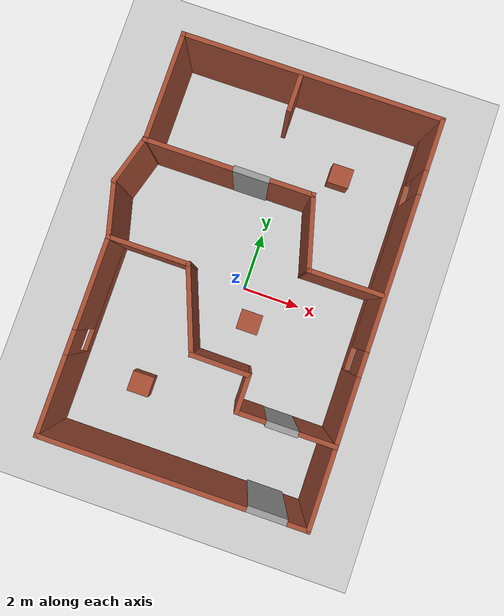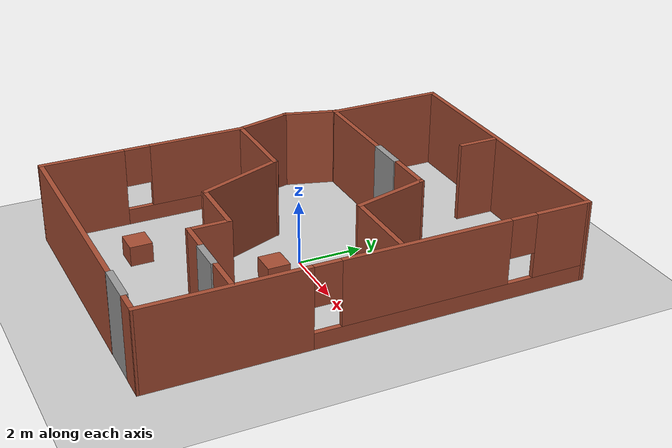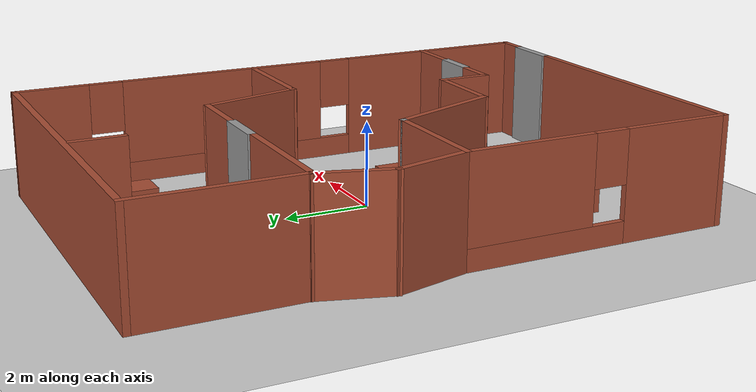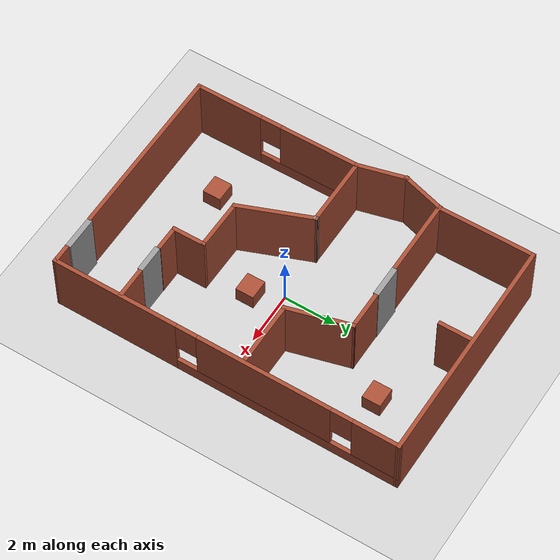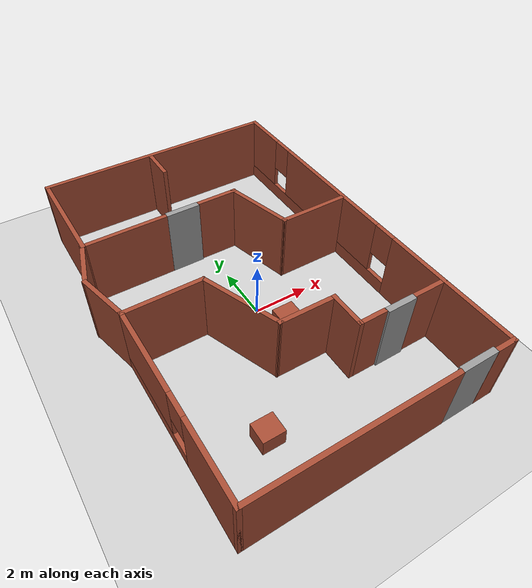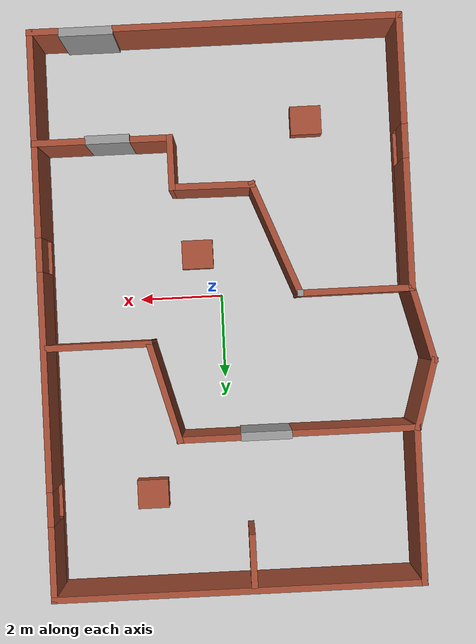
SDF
<sdf version="1.7">
 <world name="default">
  <light name="sun" type="directional">
   <pose>0 0 10 0 -0 0</pose>
   <diffuse>0.8 0.8 0.8 1</diffuse>
   <specular>0.2 0.2 0.2 1</specular>
   <attenuation>
    <range>1000</range>
    <constant>0.9</constant>
    <linear>0.01</linear>
    <quadratic>0.001</quadratic>
   </attenuation>
   <direction>-0.5 0.1 -0.9</direction>
   <spot><inner_angle>0</inner_angle><outer_angle>0</outer_angle><falloff>0</falloff></spot>
  </light>
  <model name="ground_plane">
   <static>1</static>
   <link name="link">
    <collision name="collision">
     <geometry><plane><normal>0 0 1</normal><size>100 100</size></plane></geometry>
     <surface>
      <contact><collide_bitmask>65535</collide_bitmask></contact>
      <friction><ode><mu>100</mu><mu2>50</mu2></ode></friction>
     </surface>
    </collision>
    <visual name="visual">
     <cast_shadows>0</cast_shadows>
     <geometry><plane><normal>0 0 1</normal><size>100 100</size></plane></geometry>
     <material>
      <script><uri>file://media/materials/scripts/gazebo.material</uri><name>Gazebo/Grey</name></script>
     </material>
    </visual>
   </link>
  </model>
  <gravity>0 0 -9.8</gravity>
  <magnetic_field>6e-06 2.3e-05 -4.2e-05</magnetic_field>
  <atmosphere type="adiabatic"/>
  <physics type="ode">
   <max_step_size>0.001</max_step_size>
   <real_time_factor>1</real_time_factor>
   <real_time_update_rate>1000</real_time_update_rate>
  </physics>
  <scene><ambient>0.4 0.4 0.4 1</ambient><background>0.7 0.7 0.7 1</background><shadows>1</shadows></scene>
  <spherical_coordinates>
   <surface_model>EARTH_WGS84</surface_model>
   <latitude_deg>0</latitude_deg>
   <longitude_deg>0</longitude_deg>
   <elevation>0</elevation>
   <heading_deg>0</heading_deg>
  </spherical_coordinates>
  <model name="building">
   <pose>-0.348021 0.30493 0 0 -0 0</pose>
   <link name="Door_1">
    <collision name="Door_1_Collision">
     <geometry><box><size>1.194 0.2 2.5</size></box></geometry>
     <pose>0 0 1.25 0 -0 0</pose>
    </collision>
    <visual name="Door_1_Visual">
     <pose>0 0 1.25 0 -0 0</pose>
     <geometry><box><size>1.194 0.2 2.5</size></box></geometry>
     <material>
      <script><uri>file://media/materials/scripts/gazebo.material</uri><name>Gazebo/Grey</name></script>
     </material>
    </visual>
    <pose>-0.554211 3.0204 0 0 -0 0</pose>
   </link>
   <link name="Door_2">
    <collision name="Door_2_Collision">
     <geometry><box><size>1.042 0.2 2.5</size></box></geometry>
     <pose>0 0 1.25 0 -0 0</pose>
    </collision>
    <visual name="Door_2_Visual">
     <pose>0 0 1.25 0 -0 0</pose>
     <geometry><box><size>1.042 0.2 2.5</size></box></geometry>
     <material>
      <script><uri>file://media/materials/scripts/gazebo.material</uri><name>Gazebo/Grey</name></script>
     </material>
    </visual>
    <pose>2.81507 -4.03291 0 0 -0 0</pose>
   </link>
   <link name="Door_3">
    <collision name="Door_3_Collision">
     <geometry><box><size>1.269 0.2 2.5</size></box></geometry>
     <pose>0 0 1.25 0 -0 0</pose>
    </collision>
    <visual name="Door_3_Visual">
     <pose>0 0 1.25 0 -0 0</pose>
     <geometry><box><size>1.269 0.2 2.5</size></box></geometry>
     <material>
      <script><uri>file://media/materials/scripts/gazebo.material</uri><name>Gazebo/Grey</name></script>
     </material>
    </visual>
    <pose>3.19563 -6.56686 0 0 -0 3.14027</pose>
   </link>
   <link name="Wall_17">
    <collision name="Wall_17_Collision">
     <geometry><box><size>1.25 0.15 2.5</size></box></geometry>
     <pose>0 0 1.25 0 -0 0</pose>
    </collision>
    <visual name="Wall_17_Visual">
     <pose>0 0 1.25 0 -0 0</pose>
     <geometry><box><size>1.25 0.15 2.5</size></box></geometry>
     <material>
      <script><uri>file://media/materials/scripts/gazebo.material</uri><name>Gazebo/Bricks</name></script>
      <ambient>1 1 1 1</ambient>
     </material>
     <meta><layer>0</layer></meta>
    </visual>
    <pose>3.94982 -4.00987 0 0 -0 3.14159</pose>
   </link>
   <link name="Wall_22">
    <collision name="Wall_22_Collision">
     <geometry><box><size>1.5 0.15 2.5</size></box></geometry>
     <pose>0 0 1.25 0 -0 0</pose>
    </collision>
    <visual name="Wall_22_Visual">
     <pose>0 0 1.25 0 -0 0</pose>
     <geometry><box><size>1.5 0.15 2.5</size></box></geometry>
     <material>
      <script><uri>file://media/materials/scripts/gazebo.material</uri><name>Gazebo/Bricks</name></script>
      <ambient>1 1 1 1</ambient>
     </material>
     <meta><layer>0</layer></meta>
    </visual>
    <pose>0.78799 3.03072 0 0 -0 0</pose>
   </link>
   <link name="Wall_27">
    <collision name="Wall_27_Collision">
     <geometry><box><size>1.25 0.15 2.5</size></box></geometry>
     <pose>0 0 1.25 0 -0 0</pose>
    </collision>
    <visual name="Wall_27_Visual">
     <pose>0 0 1.25 0 -0 0</pose>
     <geometry><box><size>1.25 0.15 2.5</size></box></geometry>
     <material>
      <script><uri>file://media/materials/scripts/gazebo.material</uri><name>Gazebo/Bricks</name></script>
      <ambient>1 1 1 1</ambient>
     </material>
     <meta><layer>0</layer></meta>
    </visual>
    <pose>-0.107545 5.9146 0 0 -0 -1.5708</pose>
   </link>
   <link name="Wall_3">
    <collision name="Wall_3_Collision">
     <geometry><box><size>0.75 0.15 2.5</size></box></geometry>
     <pose>0 0 1.25 0 -0 0</pose>
    </collision>
    <visual name="Wall_3_Visual">
     <pose>0 0 1.25 0 -0 0</pose>
     <geometry><box><size>0.75 0.15 2.5</size></box></geometry>
     <material>
      <script><uri>file://media/materials/scripts/gazebo.material</uri><name>Gazebo/Bricks</name></script>
      <ambient>1 1 1 1</ambient>
     </material>
     <meta><layer>0</layer></meta>
    </visual>
    <pose>4.2016 -6.59679 0 0 -0 0</pose>
   </link>
   <link name="Wall_4">
    <pose>4.525 0 0 0 -0 1.56725</pose>
    <visual name="Wall_4_Visual_0">
     <pose>-4.24673 0 1.25 0 -0 0</pose>
     <geometry><box><size>4.85021 0.15 2.5</size></box></geometry>
     <material>
      <script><uri>file://media/materials/scripts/gazebo.material</uri><name>Gazebo/Bricks</name></script>
      <ambient>1 1 1 1</ambient>
     </material>
     <meta><layer>0</layer></meta>
    </visual>
    <collision name="Wall_4_Collision_0">
     <geometry><box><size>4.85021 0.15 2.5</size></box></geometry>
     <pose>-4.24673 0 1.25 0 -0 0</pose>
    </collision>
    <visual name="Wall_4_Visual_1">
     <pose>2.4251 0 0.25 0 -0 0</pose>
     <geometry><box><size>8.49345 0.15 0.5</size></box></geometry>
     <material>
      <script><uri>file://media/materials/scripts/gazebo.material</uri><name>Gazebo/Bricks</name></script>
      <ambient>1 1 1 1</ambient>
     </material>
     <meta><layer>0</layer></meta>
    </visual>
    <collision name="Wall_4_Collision_1">
     <geometry><box><size>8.49345 0.15 0.5</size></box></geometry>
     <pose>2.4251 0 0.25 0 -0 0</pose>
    </collision>
    <visual name="Wall_4_Visual_2">
     <pose>1.53455 0 1.5 0 -0 0</pose>
     <geometry><box><size>5.11234 0.15 2</size></box></geometry>
     <material>
      <script><uri>file://media/materials/scripts/gazebo.material</uri><name>Gazebo/Bricks</name></script>
      <ambient>1 1 1 1</ambient>
     </material>
     <meta><layer>0</layer></meta>
    </visual>
    <collision name="Wall_4_Collision_2">
     <geometry><box><size>5.11234 0.15 2</size></box></geometry>
     <pose>1.53455 0 1.5 0 -0 0</pose>
    </collision>
    <visual name="Wall_4_Visual_3">
     <pose>5.78127 0 1.5 0 -0 0</pose>
     <geometry><box><size>1.78112 0.15 2</size></box></geometry>
     <material>
      <script><uri>file://media/materials/scripts/gazebo.material</uri><name>Gazebo/Bricks</name></script>
      <ambient>1 1 1 1</ambient>
     </material>
     <meta><layer>0</layer></meta>
    </visual>
    <collision name="Wall_4_Collision_3">
     <geometry><box><size>1.78112 0.15 2</size></box></geometry>
     <pose>5.78127 0 1.5 0 -0 0</pose>
    </collision>
    <visual name="Wall_4_Visual_4">
     <pose>-1.42162 0 1.9 0 -0 0</pose>
     <geometry><box><size>0.8 0.15 1.2</size></box></geometry>
     <material>
      <script><uri>file://media/materials/scripts/gazebo.material</uri><name>Gazebo/Bricks</name></script>
      <ambient>1 1 1 1</ambient>
     </material>
     <meta><layer>0</layer></meta>
    </visual>
    <collision name="Wall_4_Collision_4">
     <geometry><box><size>0.8 0.15 1.2</size></box></geometry>
     <pose>-1.42162 0 1.9 0 -0 0</pose>
    </collision>
    <visual name="Wall_4_Visual_5">
     <pose>4.49071 0 1.9 0 -0 0</pose>
     <geometry><box><size>0.8 0.15 1.2</size></box></geometry>
     <material>
      <script><uri>file://media/materials/scripts/gazebo.material</uri><name>Gazebo/Bricks</name></script>
      <ambient>1 1 1 1</ambient>
     </material>
     <meta><layer>0</layer></meta>
    </visual>
    <collision name="Wall_4_Collision_5">
     <geometry><box><size>0.8 0.15 1.2</size></box></geometry>
     <pose>4.49071 0 1.9 0 -0 0</pose>
    </collision>
   </link>
   <link name="Wall_48">
    <collision name="Wall_48_Collision">
     <geometry><box><size>2.5 0.15 2.5</size></box></geometry>
     <pose>0 0 1.25 0 -0 0</pose>
    </collision>
    <visual name="Wall_48_Visual">
     <pose>0 0 1.25 0 -0 0</pose>
     <geometry><box><size>2.5 0.15 2.5</size></box></geometry>
     <material>
      <script><uri>file://media/materials/scripts/gazebo.material</uri><name>Gazebo/Bricks</name></script>
      <ambient>1 1 1 1</ambient>
     </material>
     <meta><layer>0</layer></meta>
    </visual>
    <pose>1.7671 1.89576 0 0 -0 -1.309</pose>
   </link>
   <link name="Wall_49">
    <collision name="Wall_49_Collision">
     <geometry><box><size>2.5 0.15 2.5</size></box></geometry>
     <pose>0 0 1.25 0 -0 0</pose>
    </collision>
    <visual name="Wall_49_Visual">
     <pose>0 0 1.25 0 -0 0</pose>
     <geometry><box><size>2.5 0.15 2.5</size></box></geometry>
     <material>
      <script><uri>file://media/materials/scripts/gazebo.material</uri><name>Gazebo/Bricks</name></script>
      <ambient>1 1 1 1</ambient>
     </material>
     <meta><layer>0</layer></meta>
    </visual>
    <pose>3.24621 0.760796 0 0 -0 0</pose>
   </link>
   <link name="Wall_51">
    <pose>-4.0984 -3.42179 0 0 -0 1.5708</pose>
    <visual name="Wall_51_Visual_0">
     <pose>-1.94403 0 1.25 0 -0 0</pose>
     <geometry><box><size>2.61194 0.15 2.5</size></box></geometry>
     <material>
      <script><uri>file://media/materials/scripts/gazebo.material</uri><name>Gazebo/Bricks</name></script>
      <ambient>1 1 1 1</ambient>
     </material>
     <meta><layer>0</layer></meta>
    </visual>
    <collision name="Wall_51_Collision_0">
     <geometry><box><size>2.61194 0.15 2.5</size></box></geometry>
     <pose>-1.94403 0 1.25 0 -0 0</pose>
    </collision>
    <visual name="Wall_51_Visual_1">
     <pose>1.30597 0 0.25 0 -0 0</pose>
     <geometry><box><size>3.88806 0.15 0.5</size></box></geometry>
     <material>
      <script><uri>file://media/materials/scripts/gazebo.material</uri><name>Gazebo/Bricks</name></script>
      <ambient>1 1 1 1</ambient>
     </material>
     <meta><layer>0</layer></meta>
    </visual>
    <collision name="Wall_51_Collision_1">
     <geometry><box><size>3.88806 0.15 0.5</size></box></geometry>
     <pose>1.30597 0 0.25 0 -0 0</pose>
    </collision>
    <visual name="Wall_51_Visual_2">
     <pose>1.70597 0 1.5 0 -0 0</pose>
     <geometry><box><size>3.08806 0.15 2</size></box></geometry>
     <material>
      <script><uri>file://media/materials/scripts/gazebo.material</uri><name>Gazebo/Bricks</name></script>
      <ambient>1 1 1 1</ambient>
     </material>
     <meta><layer>0</layer></meta>
    </visual>
    <collision name="Wall_51_Collision_2">
     <geometry><box><size>3.08806 0.15 2</size></box></geometry>
     <pose>1.70597 0 1.5 0 -0 0</pose>
    </collision>
    <visual name="Wall_51_Visual_3">
     <pose>-0.238064 0 1.9 0 -0 0</pose>
     <geometry><box><size>0.8 0.15 1.2</size></box></geometry>
     <material>
      <script><uri>file://media/materials/scripts/gazebo.material</uri><name>Gazebo/Bricks</name></script>
      <ambient>1 1 1 1</ambient>
     </material>
     <meta><layer>0</layer></meta>
    </visual>
    <collision name="Wall_51_Collision_3">
     <geometry><box><size>0.8 0.15 1.2</size></box></geometry>
     <pose>-0.238064 0 1.9 0 -0 0</pose>
    </collision>
   </link>
   <link name="Wall_62">
    <collision name="Wall_62_Collision">
     <geometry><box><size>8.75 0.15 2.5</size></box></geometry>
     <pose>0 0 1.25 0 -0 0</pose>
    </collision>
    <visual name="Wall_62_Visual">
     <pose>0 0 1.25 0 -0 0</pose>
     <geometry><box><size>8.75 0.15 2.5</size></box></geometry>
     <material>
      <script><uri>file://media/materials/scripts/gazebo.material</uri><name>Gazebo/Bricks</name></script>
      <ambient>1 1 1 1</ambient>
     </material>
     <meta><layer>0</layer></meta>
    </visual>
    <pose>0.248391 6.59679 0 0 -0 3.14159</pose>
   </link>
   <link name="Wall_63">
    <collision name="Wall_63_Collision">
     <geometry><box><size>3.75 0.15 2.5</size></box></geometry>
     <pose>0 0 1.25 0 -0 0</pose>
    </collision>
    <visual name="Wall_63_Visual">
     <pose>0 0 1.25 0 -0 0</pose>
     <geometry><box><size>3.75 0.15 2.5</size></box></geometry>
     <material>
      <script><uri>file://media/materials/scripts/gazebo.material</uri><name>Gazebo/Bricks</name></script>
      <ambient>1 1 1 1</ambient>
     </material>
     <meta><layer>0</layer></meta>
    </visual>
    <pose>-4.05161 4.79679 0 0 -0 -1.5708</pose>
   </link>
   <link name="Wall_67">
    <collision name="Wall_67_Collision">
     <geometry><box><size>1.91045 0.15 2.5</size></box></geometry>
     <pose>0 0 1.25 0 -0 0</pose>
    </collision>
    <visual name="Wall_67_Visual">
     <pose>0 0 1.25 0 -0 0</pose>
     <geometry><box><size>1.91045 0.15 2.5</size></box></geometry>
     <material>
      <script><uri>file://media/materials/scripts/gazebo.material</uri><name>Gazebo/Bricks</name></script>
      <ambient>1 1 1 1</ambient>
     </material>
     <meta><layer>0</layer></meta>
    </visual>
    <pose>-4.31441 0.606519 0 0 -0 -1.32286</pose>
   </link>
   <link name="Wall_69">
    <collision name="Wall_69_Collision">
     <geometry><box><size>3 0.15 2.5</size></box></geometry>
     <pose>0 0 1.25 0 -0 0</pose>
    </collision>
    <visual name="Wall_69_Visual">
     <pose>0 0 1.25 0 -0 0</pose>
     <geometry><box><size>3 0.15 2.5</size></box></geometry>
     <material>
      <script><uri>file://media/materials/scripts/gazebo.material</uri><name>Gazebo/Bricks</name></script>
      <ambient>1 1 1 1</ambient>
     </material>
     <meta><layer>0</layer></meta>
    </visual>
    <pose>-2.64928 2.99737 0 0 -0 3.14159</pose>
   </link>
   <link name="Wall_7">
    <collision name="Wall_7_Collision">
     <geometry><box><size>6.75 0.15 2.5</size></box></geometry>
     <pose>0 0 1.25 0 -0 0</pose>
    </collision>
    <visual name="Wall_7_Visual">
     <pose>0 0 1.25 0 -0 0</pose>
     <geometry><box><size>6.75 0.15 2.5</size></box></geometry>
     <material>
      <script><uri>file://media/materials/scripts/gazebo.material</uri><name>Gazebo/Bricks</name></script>
      <ambient>1 1 1 1</ambient>
     </material>
     <meta><layer>0</layer></meta>
    </visual>
    <pose>-0.798397 -6.59679 0 0 -0 0</pose>
   </link>
   <link name="Wall_71">
    <collision name="Wall_71_Collision">
     <geometry><box><size>1.75378 0.15 2.5</size></box></geometry>
     <pose>0 0 1.25 0 -0 0</pose>
    </collision>
    <visual name="Wall_71_Visual">
     <pose>0 0 1.25 0 -0 0</pose>
     <geometry><box><size>1.75378 0.15 2.5</size></box></geometry>
     <material>
      <script><uri>file://media/materials/scripts/gazebo.material</uri><name>Gazebo/Bricks</name></script>
      <ambient>1 1 1 1</ambient>
     </material>
     <meta><layer>0</layer></meta>
    </visual>
    <pose>-4.30235 2.2286 0 0 -0 -1.85919</pose>
   </link>
   <link name="Wall_73">
    <collision name="Wall_73_Collision">
     <geometry><box><size>2.00009 0.15 2.5</size></box></geometry>
     <pose>0 0 1.25 0 -0 0</pose>
    </collision>
    <visual name="Wall_73_Visual">
     <pose>0 0 1.25 0 -0 0</pose>
     <geometry><box><size>2.00009 0.15 2.5</size></box></geometry>
     <material>
      <script><uri>file://media/materials/scripts/gazebo.material</uri><name>Gazebo/Bricks</name></script>
      <ambient>1 1 1 1</ambient>
     </material>
     <meta><layer>0</layer></meta>
    </visual>
    <pose>0.428488 -2.83622 0 0 -0 -0.010147</pose>
   </link>
   <link name="Wall_76">
    <collision name="Wall_76_Collision">
     <geometry><box><size>1.30382 0.15 2.5</size></box></geometry>
     <pose>0 0 1.25 0 -0 0</pose>
    </collision>
    <visual name="Wall_76_Visual">
     <pose>0 0 1.25 0 -0 0</pose>
     <geometry><box><size>1.30382 0.15 2.5</size></box></geometry>
     <material>
      <script><uri>file://media/materials/scripts/gazebo.material</uri><name>Gazebo/Bricks</name></script>
      <ambient>1 1 1 1</ambient>
     </material>
     <meta><layer>0</layer></meta>
    </visual>
    <pose>1.3636 -3.42232 0 0 -0 -1.5708</pose>
   </link>
   <link name="Wall_79">
    <collision name="Wall_79_Collision">
     <geometry><box><size>1 0.15 2.5</size></box></geometry>
     <pose>0 0 1.25 0 -0 0</pose>
    </collision>
    <visual name="Wall_79_Visual">
     <pose>0 0 1.25 0 -0 0</pose>
     <geometry><box><size>1 0.15 2.5</size></box></geometry>
     <material>
      <script><uri>file://media/materials/scripts/gazebo.material</uri><name>Gazebo/Bricks</name></script>
      <ambient>1 1 1 1</ambient>
     </material>
     <meta><layer>0</layer></meta>
    </visual>
    <pose>1.7886 -3.99903 0 0 -0 0</pose>
   </link>
   <link name="Wall_83">
    <collision name="Wall_83_Collision">
     <geometry><box><size>2.75 0.15 2.5</size></box></geometry>
     <pose>0 0 1.25 0 -0 0</pose>
    </collision>
    <visual name="Wall_83_Visual">
     <pose>0 0 1.25 0 -0 0</pose>
     <geometry><box><size>2.75 0.15 2.5</size></box></geometry>
     <material>
      <script><uri>file://media/materials/scripts/gazebo.material</uri><name>Gazebo/Bricks</name></script>
      <ambient>1 1 1 1</ambient>
     </material>
     <meta><layer>0</layer></meta>
    </visual>
    <pose>-2.7984 -0.246788 0 0 -0 0</pose>
   </link>
   <link name="Wall_84">
    <collision name="Wall_84_Collision">
     <geometry><box><size>0.15 0.15 2.5</size></box></geometry>
     <pose>0 0 1.25 0 -0 0</pose>
    </collision>
    <visual name="Wall_84_Visual">
     <pose>0 0 1.25 0 -0 0</pose>
     <geometry><box><size>0.15 0.15 2.5</size></box></geometry>
     <material>
      <script><uri>file://media/materials/scripts/gazebo.material</uri><name>Gazebo/Grey</name></script>
      <ambient>1 1 1 1</ambient>
     </material>
     <meta><layer>0</layer></meta>
    </visual>
    <pose>-1.4984 -0.246788 0 0 -0 0</pose>
   </link>
   <link name="Wall_85">
    <collision name="Wall_85_Collision">
     <geometry><box><size>2.91775 0.15 2.5</size></box></geometry>
     <pose>0 0 1.25 0 -0 0</pose>
    </collision>
    <visual name="Wall_85_Visual">
     <pose>0 0 1.25 0 -0 0</pose>
     <geometry><box><size>2.91775 0.15 2.5</size></box></geometry>
     <material>
      <script><uri>file://media/materials/scripts/gazebo.material</uri><name>Gazebo/Bricks</name></script>
      <ambient>1 1 1 1</ambient>
     </material>
     <meta><layer>0</layer></meta>
    </visual>
    <pose>-0.997455 -1.53681 0 0 -0 -1.2004</pose>
   </link>
   <static>1</static>
  </model>
  <model name="unit_box_3">
   <link name="link">
    <inertial>
     <mass>1</mass>
     <inertia>
      <ixx>0.166667</ixx>
      <ixy>0</ixy>
      <ixz>0</ixz>
      <iyy>0.166667</iyy>
      <iyz>0</iyz>
      <izz>0.166667</izz>
     </inertia>
    </inertial>
    <visual name="visual">
     <geometry><box><size>0.754763 0.696011 0.624424</size></box></geometry>
     <material>
      <script><name>Gazebo/Bricks</name><uri>file://media/materials/scripts/gazebo.material</uri></script>
      <shader type="pixel"><normal_map>__default__</normal_map></shader>
      <ambient>1 1 1 1</ambient>
      <diffuse>1 1 1 1</diffuse>
      <specular>0.2 0.2 0.2 1</specular>
      <emissive>0 0 0 1</emissive>
     </material>
    </visual>
    <collision name="collision">
     <geometry><box><size>0.754763 0.696011 0.624424</size></box></geometry>
     <surface>
      <friction>
       <ode><mu>1</mu><mu2>1</mu2><fdir1>0 0 0</fdir1><slip1>0</slip1><slip2>0</slip2></ode>
       <torsional>
        <coefficient>1</coefficient>
        <patch_radius>0</patch_radius>
        <surface_radius>0</surface_radius>
        <use_patch_radius>1</use_patch_radius>
        <ode><slip>0</slip></ode>
       </torsional>
      </friction>
      <bounce><restitution_coefficient>0</restitution_coefficient><threshold>1e+06</threshold></bounce>
      <contact>
       <collide_without_contact>0</collide_without_contact>
       <collide_without_contact_bitmask>1</collide_without_contact_bitmask>
       <collide_bitmask>1</collide_bitmask>
       <ode>
        <soft_cfm>0</soft_cfm>
        <soft_erp>0.2</soft_erp>
        <kp>1e+13</kp>
        <kd>1</kd>
        <max_vel>0.01</max_vel>
        <min_depth>0</min_depth>
       </ode>
       <bullet>
        <split_impulse>1</split_impulse>
        <split_impulse_penetration_threshold>-0.01</split_impulse_penetration_threshold>
        <soft_cfm>0</soft_cfm>
        <soft_erp>0.2</soft_erp>
        <kp>1e+13</kp>
        <kd>1</kd>
       </bullet>
      </contact>
     </surface>
    </collision>
   </link>
   <static>0</static>
   <pose>1.89691 4.75214 0.312212 0 -0 0</pose>
  </model>
  <model name="unit_box_2">
   <link name="link">
    <inertial>
     <mass>1</mass>
     <inertia>
      <ixx>0.166667</ixx>
      <ixy>0</ixy>
      <ixz>0</ixz>
      <iyy>0.166667</iyy>
      <iyz>0</iyz>
      <izz>0.166667</izz>
     </inertia>
    </inertial>
    <visual name="visual">
     <geometry><box><size>0.754769 0.696011 0.624422</size></box></geometry>
     <material>
      <script><name>Gazebo/Bricks</name><uri>file://media/materials/scripts/gazebo.material</uri></script>
      <shader type="pixel"><normal_map>__default__</normal_map></shader>
      <ambient>1 1 1 1</ambient>
      <diffuse>1 1 1 1</diffuse>
      <specular>0.2 0.2 0.2 1</specular>
      <emissive>0 0 0 1</emissive>
     </material>
    </visual>
    <collision name="collision">
     <geometry><box><size>0.754769 0.696011 0.624422</size></box></geometry>
     <surface>
      <friction>
       <ode><mu>1</mu><mu2>1</mu2><fdir1>0 0 0</fdir1><slip1>0</slip1><slip2>0</slip2></ode>
       <torsional>
        <coefficient>1</coefficient>
        <patch_radius>0</patch_radius>
        <surface_radius>0</surface_radius>
        <use_patch_radius>1</use_patch_radius>
        <ode><slip>0</slip></ode>
       </torsional>
      </friction>
      <bounce><restitution_coefficient>0</restitution_coefficient><threshold>1e+06</threshold></bounce>
      <contact>
       <collide_without_contact>0</collide_without_contact>
       <collide_without_contact_bitmask>1</collide_without_contact_bitmask>
       <collide_bitmask>1</collide_bitmask>
       <ode>
        <soft_cfm>0</soft_cfm>
        <soft_erp>0.2</soft_erp>
        <kp>1e+13</kp>
        <kd>1</kd>
        <max_vel>0.01</max_vel>
        <min_depth>0</min_depth>
       </ode>
       <bullet>
        <split_impulse>1</split_impulse>
        <split_impulse_penetration_threshold>-0.01</split_impulse_penetration_threshold>
        <soft_cfm>0</soft_cfm>
        <soft_erp>0.2</soft_erp>
        <kp>1e+13</kp>
        <kd>1</kd>
       </bullet>
      </contact>
     </surface>
    </collision>
   </link>
   <static>0</static>
   <pose>0.537603 -1.0323 0.312212 0 -0 0</pose>
  </model>
  <model name="unit_box_1">
   <link name="link">
    <inertial>
     <mass>1</mass>
     <inertia>
      <ixx>0.166667</ixx>
      <ixy>0</ixy>
      <ixz>0</ixz>
      <iyy>0.166667</iyy>
      <iyz>0</iyz>
      <izz>0.166667</izz>
     </inertia>
    </inertial>
    <visual name="visual">
     <geometry><box><size>0.754766 0.696009 0.624421</size></box></geometry>
     <material>
      <script><name>Gazebo/Bricks</name><uri>file://media/materials/scripts/gazebo.material</uri></script>
      <shader type="pixel"><normal_map>__default__</normal_map></shader>
      <ambient>1 1 1 1</ambient>
      <diffuse>1 1 1 1</diffuse>
      <specular>0.2 0.2 0.2 1</specular>
      <emissive>0 0 0 1</emissive>
     </material>
    </visual>
    <collision name="collision">
     <geometry><box><size>0.754766 0.696009 0.624421</size></box></geometry>
     <surface>
      <friction>
       <ode><mu>1</mu><mu2>1</mu2><fdir1>0 0 0</fdir1><slip1>0</slip1><slip2>0</slip2></ode>
       <torsional>
        <coefficient>1</coefficient>
        <patch_radius>0</patch_radius>
        <surface_radius>0</surface_radius>
        <use_patch_radius>1</use_patch_radius>
        <ode><slip>0</slip></ode>
       </torsional>
      </friction>
      <bounce><restitution_coefficient>0</restitution_coefficient><threshold>1e+06</threshold></bounce>
      <contact>
       <collide_without_contact>0</collide_without_contact>
       <collide_without_contact_bitmask>1</collide_without_contact_bitmask>
       <collide_bitmask>1</collide_bitmask>
       <ode>
        <soft_cfm>0</soft_cfm>
        <soft_erp>0.2</soft_erp>
        <kp>1e+13</kp>
        <kd>1</kd>
        <max_vel>0.01</max_vel>
        <min_depth>0</min_depth>
       </ode>
       <bullet>
        <split_impulse>1</split_impulse>
        <split_impulse_penetration_threshold>-0.01</split_impulse_penetration_threshold>
        <soft_cfm>0</soft_cfm>
        <soft_erp>0.2</soft_erp>
        <kp>1e+13</kp>
        <kd>1</kd>
       </bullet>
      </contact>
     </surface>
    </collision>
   </link>
   <static>0</static>
   <pose>-2.25954 -4.17782 0.312212 0 -0 0</pose>
  </model>
  <light name="user_point_light_0" type="point">
   <pose>-0.48474 5.50513 1 0 -0 0</pose>
   <diffuse>0.5 0.5 0.5 1</diffuse>
   <specular>0.1 0.1 0.1 1</specular>
   <attenuation>
    <range>20</range>
    <constant>0.5</constant>
    <linear>0.01</linear>
    <quadratic>0.001</quadratic>
   </attenuation>
   <cast_shadows>0</cast_shadows>
   <direction>0 0 -1</direction>
  </light>
  <light name="user_point_light_1" type="point">
   <pose>-0.85481 -2.54816 1 0 -0 0</pose>
   <diffuse>0.5 0.5 0.5 1</diffuse>
   <specular>0.1 0.1 0.1 1</specular>
   <attenuation>
    <range>20</range>
    <constant>0.5</constant>
    <linear>0.01</linear>
    <quadratic>0.001</quadratic>
   </attenuation>
   <cast_shadows>0</cast_shadows>
   <direction>0 0 -1</direction>
  </light>
  <light name="user_point_light_2" type="point">
   <pose>-15.2451 11.6702 1 0 -0 0</pose>
   <diffuse>0.5 0.5 0.5 1</diffuse>
   <specular>0.1 0.1 0.1 1</specular>
   <attenuation>
    <range>20</range>
    <constant>0.5</constant>
    <linear>0.01</linear>
    <quadratic>0.001</quadratic>
   </attenuation>
   <cast_shadows>0</cast_shadows>
   <direction>0 0 -1</direction>
  </light>
  <light name="user_point_light_3" type="point">
   <pose>14.9923 14.2616 1 0 -0 0</pose>
   <diffuse>0.5 0.5 0.5 1</diffuse>
   <specular>0.1 0.1 0.1 1</specular>
   <attenuation>
    <range>20</range>
    <constant>0.5</constant>
    <linear>0.01</linear>
    <quadratic>0.001</quadratic>
   </attenuation>
   <cast_shadows>0</cast_shadows>
   <direction>0 0 -1</direction>
  </light>
  <light name="user_point_light_4" type="point">
   <pose>-14.431 -13.6534 1 0 -0 0</pose>
   <diffuse>0.5 0.5 0.5 1</diffuse>
   <specular>0.1 0.1 0.1 1</specular>
   <attenuation>
    <range>20</range>
    <constant>0.5</constant>
    <linear>0.01</linear>
    <quadratic>0.001</quadratic>
   </attenuation>
   <cast_shadows>0</cast_shadows>
   <direction>0 0 -1</direction>
  </light>
  <light name="user_point_light_5" type="point">
   <pose>16.3233 -13.6392 1 0 -0 0</pose>
   <diffuse>0.5 0.5 0.5 1</diffuse>
   <specular>0.1 0.1 0.1 1</specular>
   <attenuation>
    <range>20</range>
    <constant>0.5</constant>
    <linear>0.01</linear>
    <quadratic>0.001</quadratic>
   </attenuation>
   <cast_shadows>0</cast_shadows>
   <direction>0 0 -1</direction>
  </light>
 </world>
</sdf>
